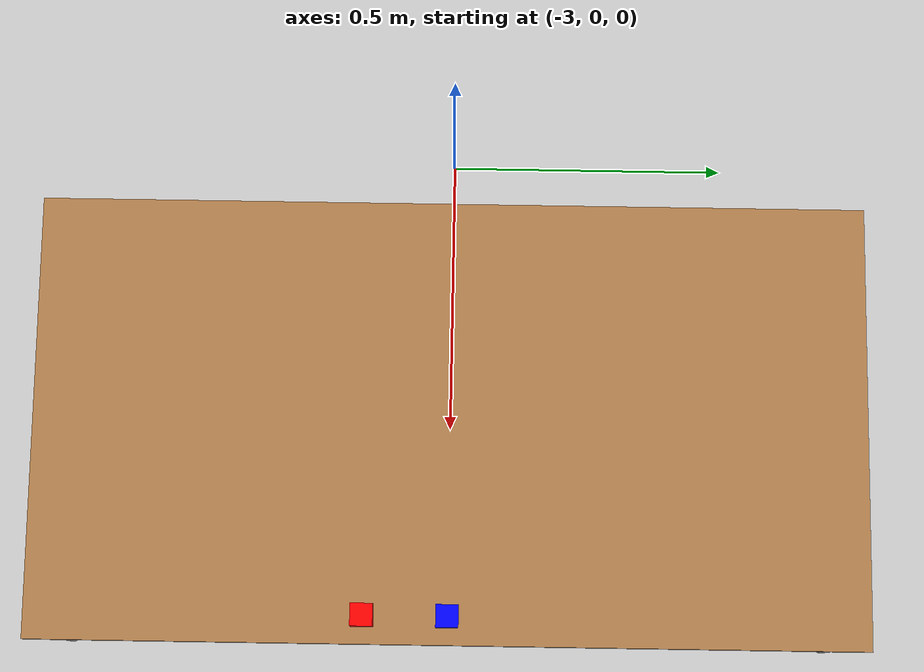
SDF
<sdf version="1.7">
 <world name="my_world">
  <include><uri>model://sun</uri></include>
  <model name="ground_plane">
   <static>1</static>
   <link name="link">
    <collision name="collision">
     <geometry><plane><normal>0 0 1</normal><size>100 100</size></plane></geometry>
     <surface>
      <contact><collide_bitmask>65535</collide_bitmask></contact>
      <friction><ode><mu>1</mu><mu2>50</mu2></ode></friction>
     </surface>
    </collision>
    <visual name="visual">
     <cast_shadows>0</cast_shadows>
     <geometry><plane><normal>0 0 1</normal><size>100 100</size></plane></geometry>
     <material>
      <script><uri>file://media/materials/scripts/gazebo.material</uri><name>Gazebo/Grey</name></script>
     </material>
    </visual>
   </link>
  </model>
  <model name="blue_cube_left_new">
   <pose>-2.15 0 0.135 0 0 0</pose>
   <link name="link">
    <self_collide>1</self_collide>
    <inertial>
     <inertia><ixx>0.15</ixx><ixy>0</ixy><ixz>0</ixz><iyy>0.15</iyy><iyz>0</iyz><izz>0.15</izz></inertia>
     <mass>0.2</mass>
    </inertial>
    <visual name="visual">
     <geometry><box><size>0.04 0.04 0.04</size></box></geometry>
     <material>
      <ambient>0 0 1 1</ambient>
      <diffuse>0 0 1 1</diffuse>
      <specular>0.1 0.1 0.1 1</specular>
      <emissive>0 0 0 1</emissive>
      <shader type="pixel"><normal_map>__default__</normal_map></shader>
      <script><name>ModelPreview_1::link::visual_MATERIAL_</name><uri>__default__</uri></script>
     </material>
    </visual>
    <collision name="collision">
     <max_contacts>100</max_contacts>
     <geometry><box><size>0.039 0.039 0.039</size></box></geometry>
     <surface>
      <friction>
       <ode><mu>1</mu><mu2>1</mu2><fdir1>0 0 0</fdir1><slip1>0</slip1><slip2>0</slip2></ode>
       <torsional>
        <coefficient>1</coefficient>
        <patch_radius>0</patch_radius>
        <surface_radius>0</surface_radius>
        <use_patch_radius>1</use_patch_radius>
        <ode><slip>0</slip></ode>
       </torsional>
      </friction>
      <bounce><restitution_coefficient>0</restitution_coefficient><threshold>1e+05</threshold></bounce>
      <contact>
       <collide_without_contact>0</collide_without_contact>
       <collide_without_contact_bitmask>1</collide_without_contact_bitmask>
       <collide_bitmask>1</collide_bitmask>
       <ode>
        <soft_cfm>0</soft_cfm>
        <soft_erp>0.2</soft_erp>
        <kp>1e+13</kp>
        <kd>1</kd>
        <max_vel>0.01</max_vel>
        <min_depth>0</min_depth>
       </ode>
       <bullet>
        <split_impulse>1</split_impulse>
        <split_impulse_penetration_threshold>-0.01</split_impulse_penetration_threshold>
        <soft_cfm>0</soft_cfm>
        <soft_erp>0.2</soft_erp>
        <kp>1e+13</kp>
        <kd>1</kd>
       </bullet>
      </contact>
     </surface>
    </collision>
   </link>
   <static>0</static>
  </model>
  <model name="table_left">
   <static>1</static>
   <link name="link">
    <collision name="surface">
     <pose>0 0 0.1 0 -0 0</pose>
     <geometry><box><size>1.5 0.8 0.03</size></box></geometry>
     <surface><friction><ode><mu>0.6</mu><mu2>0.6</mu2></ode></friction></surface>
    </collision>
    <visual name="visual1">
     <pose>0 0 0.1 0 -0 0</pose>
     <geometry><box><size>1.5 0.8 0.03</size></box></geometry>
     <material>
      <script><uri>file://media/materials/scripts/gazebo.material</uri><name>Gazebo/Wood</name></script>
     </material>
    </visual>
    <collision name="front_left_leg">
     <pose>0.68 0.38 0.05 0 -0 0</pose>
     <geometry><cylinder><radius>0.02</radius><length>0.1</length></cylinder></geometry>
    </collision>
    <visual name="front_left_leg">
     <pose>0.68 0.38 0.05 0 -0 0</pose>
     <geometry><cylinder><radius>0.02</radius><length>0.1</length></cylinder></geometry>
     <material>
      <script><uri>file://media/materials/scripts/gazebo.material</uri><name>Gazebo/Grey</name></script>
     </material>
    </visual>
    <collision name="front_right_leg">
     <pose>0.68 -0.38 0.05 0 -0 0</pose>
     <geometry><cylinder><radius>0.02</radius><length>0.1</length></cylinder></geometry>
    </collision>
    <visual name="front_right_leg">
     <pose>0.68 -0.38 0.05 0 -0 0</pose>
     <geometry><cylinder><radius>0.02</radius><length>0.1</length></cylinder></geometry>
     <material>
      <script><uri>file://media/materials/scripts/gazebo.material</uri><name>Gazebo/Grey</name></script>
     </material>
    </visual>
    <collision name="back_right_leg">
     <pose>-0.68 -0.38 0.05 0 -0 0</pose>
     <geometry><cylinder><radius>0.02</radius><length>0.1</length></cylinder></geometry>
    </collision>
    <visual name="back_right_leg">
     <pose>-0.68 -0.38 0.05 0 -0 0</pose>
     <geometry><cylinder><radius>0.02</radius><length>0.1</length></cylinder></geometry>
     <material>
      <script><uri>file://media/materials/scripts/gazebo.material</uri><name>Gazebo/Grey</name></script>
     </material>
    </visual>
    <collision name="back_left_leg">
     <pose>-0.68 0.38 0.05 0 -0 0</pose>
     <geometry><cylinder><radius>0.02</radius><length>0.1</length></cylinder></geometry>
    </collision>
    <visual name="back_left_leg">
     <pose>-0.68 0.38 0.05 0 -0 0</pose>
     <geometry><cylinder><radius>0.02</radius><length>0.1</length></cylinder></geometry>
     <material>
      <script><uri>file://media/materials/scripts/gazebo.material</uri><name>Gazebo/Grey</name></script>
     </material>
    </visual>
   </link>
   <pose>-2.50 0 0 0 -0 1.57176</pose>
  </model>
  <model name="red_cube_left_new">
   <pose>-2.15 -0.15 0.135 0 0 0</pose>
   <link name="link">
    <self_collide>1</self_collide>
    <inertial>
     <inertia><ixx>0.15</ixx><ixy>0</ixy><ixz>0</ixz><iyy>0.15</iyy><iyz>0</iyz><izz>0.15</izz></inertia>
     <mass>0.2</mass>
    </inertial>
    <visual name="visual">
     <geometry><box><size>0.04 0.04 0.04</size></box></geometry>
     <material>
      <ambient>1 0 0 1</ambient>
      <diffuse>1 0 0 1</diffuse>
      <specular>0.1 0.1 0.1 1</specular>
      <emissive>0 0 0 1</emissive>
      <shader type="pixel"><normal_map>__default__</normal_map></shader>
      <script><name>ModelPreview_1::link::visual_MATERIAL_</name><uri>__default__</uri></script>
     </material>
    </visual>
    <collision name="collision">
     <max_contacts>100</max_contacts>
     <geometry><box><size>0.039 0.039 0.039</size></box></geometry>
     <surface>
      <friction>
       <ode><mu>1</mu><mu2>1</mu2><fdir1>0 0 0</fdir1><slip1>0</slip1><slip2>0</slip2></ode>
       <torsional>
        <coefficient>1</coefficient>
        <patch_radius>0</patch_radius>
        <surface_radius>0</surface_radius>
        <use_patch_radius>1</use_patch_radius>
        <ode><slip>0</slip></ode>
       </torsional>
      </friction>
      <bounce><restitution_coefficient>0</restitution_coefficient><threshold>1e+05</threshold></bounce>
      <contact>
       <collide_without_contact>0</collide_without_contact>
       <collide_without_contact_bitmask>1</collide_without_contact_bitmask>
       <collide_bitmask>1</collide_bitmask>
       <ode>
        <soft_cfm>0</soft_cfm>
        <soft_erp>0.2</soft_erp>
        <kp>1e+13</kp>
        <kd>1</kd>
        <max_vel>0.01</max_vel>
        <min_depth>0</min_depth>
       </ode>
       <bullet>
        <split_impulse>1</split_impulse>
        <split_impulse_penetration_threshold>-0.01</split_impulse_penetration_threshold>
        <soft_cfm>0</soft_cfm>
        <soft_erp>0.2</soft_erp>
        <kp>1e+13</kp>
        <kd>1</kd>
       </bullet>
      </contact>
     </surface>
    </collision>
   </link>
   <static>0</static>
  </model>
 </world>
</sdf>
